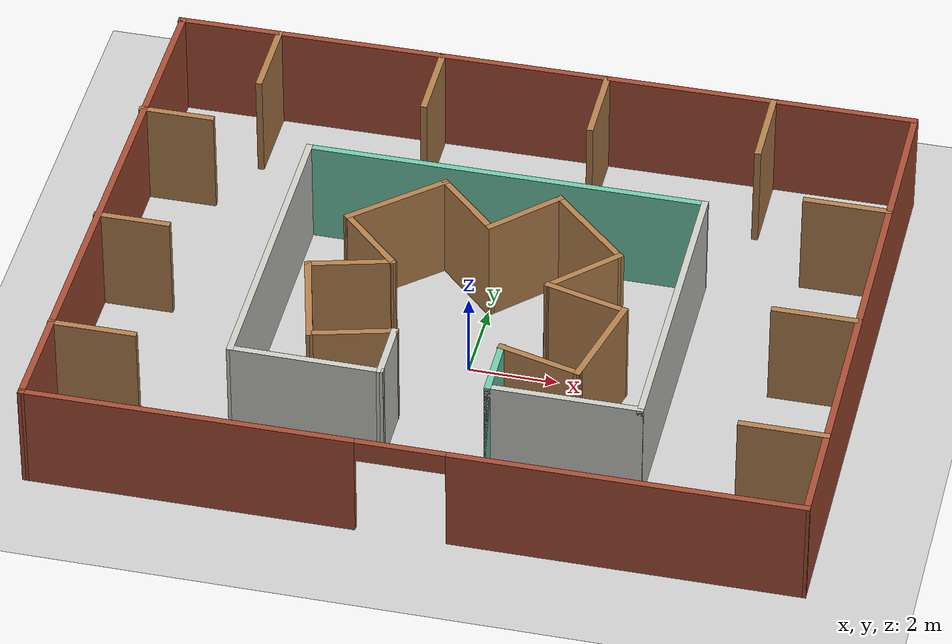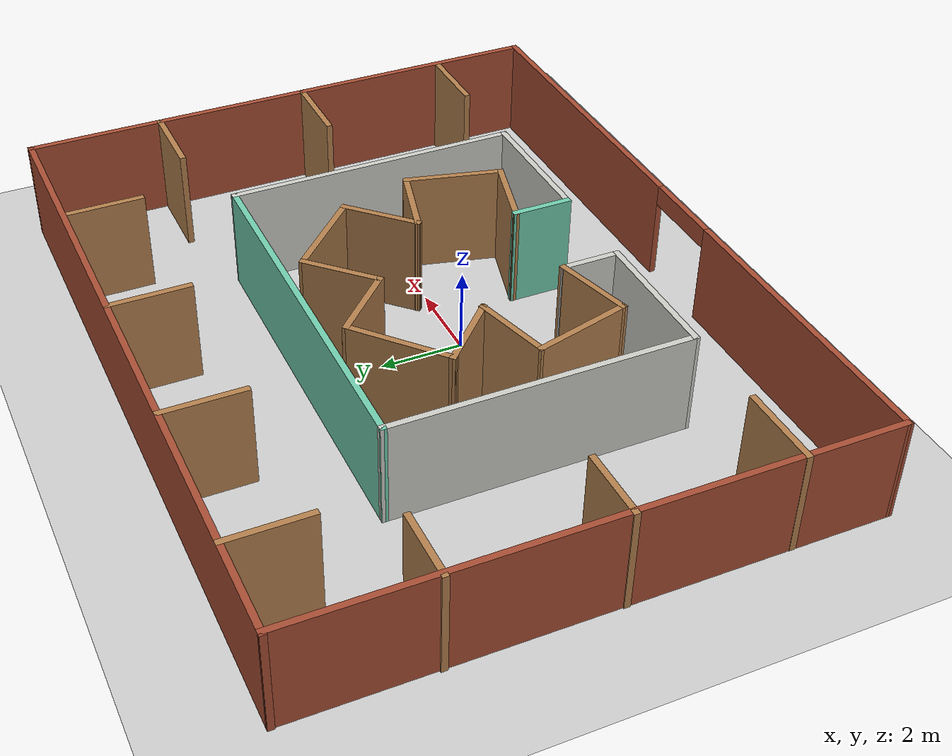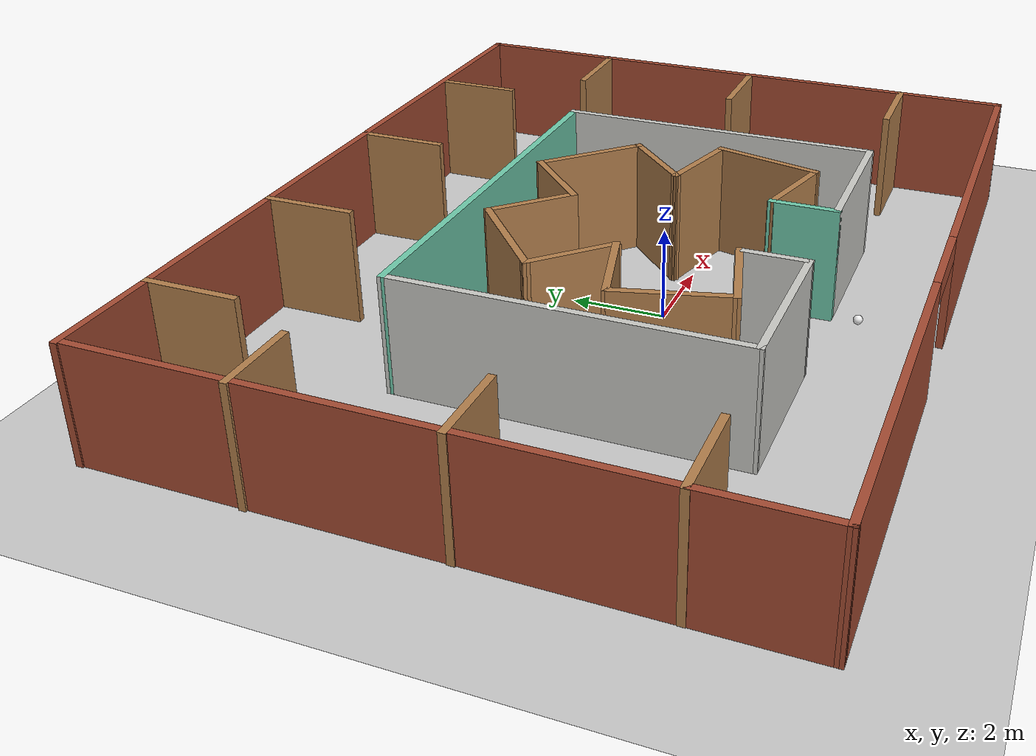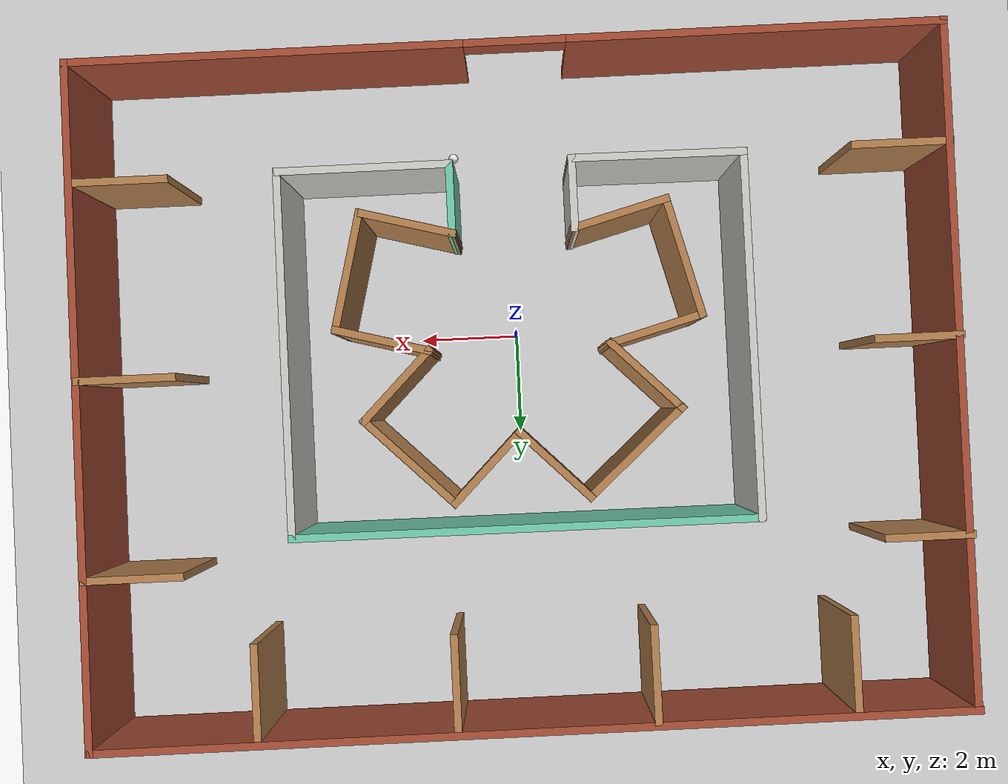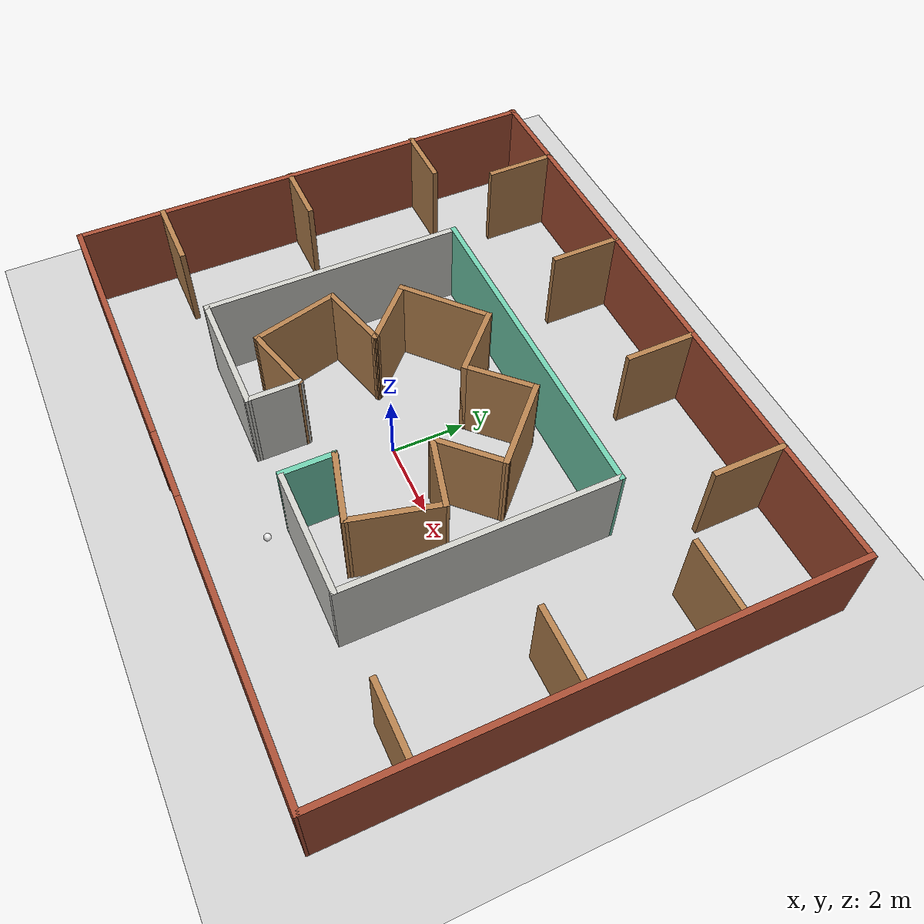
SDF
<sdf version="1.6">
 <world name="default">
  <plugin name="welcome" filename="libwelcome.so"/>
  <light name="sun" type="directional">
   <pose>0 0 10 0 -0 0</pose>
   <diffuse>0.8 0.8 0.8 1</diffuse>
   <specular>0.2 0.2 0.2 1</specular>
   <attenuation>
    <range>1000</range>
    <constant>0.9</constant>
    <linear>0.01</linear>
    <quadratic>0.001</quadratic>
   </attenuation>
   <direction>-0.5 0.1 -0.9</direction>
  </light>
  <model name="ground_plane">
   <static>1</static>
   <link name="link">
    <collision name="collision">
     <geometry><plane><normal>0 0 1</normal><size>100 100</size></plane></geometry>
     <surface>
      <contact><collide_bitmask>65535</collide_bitmask></contact>
      <friction><ode><mu>100</mu><mu2>50</mu2></ode></friction>
     </surface>
    </collision>
    <visual name="visual">
     <cast_shadows>0</cast_shadows>
     <geometry><plane><normal>0 0 1</normal><size>100 100</size></plane></geometry>
     <material>
      <script><uri>file://media/materials/scripts/gazebo.material</uri><name>Gazebo/Grey</name></script>
     </material>
    </visual>
   </link>
  </model>
  <gravity>0 0 -9.8</gravity>
  <magnetic_field>6e-06 2.3e-05 -4.2e-05</magnetic_field>
  <atmosphere type="adiabatic"/>
  <physics name="default_physics" default="0" type="ode">
   <max_step_size>0.001</max_step_size>
   <real_time_factor>1</real_time_factor>
   <real_time_update_rate>1000</real_time_update_rate>
  </physics>
  <scene><ambient>0.4 0.4 0.4 1</ambient><background>0.7 0.7 0.7 1</background><shadows>1</shadows></scene>
  <spherical_coordinates>
   <surface_model>EARTH_WGS84</surface_model>
   <latitude_deg>0</latitude_deg>
   <longitude_deg>0</longitude_deg>
   <elevation>0</elevation>
   <heading_deg>0</heading_deg>
  </spherical_coordinates>
  <model name="mybuilding">
   <pose>-0.00822 1.08526 0 0 -0 0</pose>
   <link name="Wall_107">
    <collision name="Wall_107_Collision">
     <geometry><box><size>13.5 0.15 2.5</size></box></geometry>
     <pose>0 0 1.25 0 -0 0</pose>
    </collision>
    <visual name="Wall_107_Visual">
     <pose>0 0 1.25 0 -0 0</pose>
     <geometry><box><size>13.5 0.15 2.5</size></box></geometry>
     <material>
      <script><uri>file://media/materials/scripts/gazebo.material</uri><name>Gazebo/Bricks</name></script>
      <ambient>1 1 1 1</ambient>
     </material>
     <meta><layer>0</layer></meta>
    </visual>
    <pose>-8.53983 -0.013147 0 0 -0 1.56629</pose>
   </link>
   <link name="Wall_110">
    <collision name="Wall_110_Collision">
     <geometry><box><size>17.2299 0.15 2.5</size></box></geometry>
     <pose>0 0 1.25 0 -0 0</pose>
    </collision>
    <visual name="Wall_110_Visual">
     <pose>0 0 1.25 0 -0 0</pose>
     <geometry><box><size>17.2299 0.15 2.5</size></box></geometry>
     <material>
      <script><uri>file://media/materials/scripts/gazebo.material</uri><name>Gazebo/Bricks</name></script>
      <ambient>1 1 1 1</ambient>
     </material>
     <meta><layer>0</layer></meta>
    </visual>
    <pose>8.4e-05 6.67505 0 0 -0 0.001545</pose>
   </link>
   <link name="Wall_117">
    <pose>-0.01492 -6.67493 0 0 -0 0.001545</pose>
    <visual name="Wall_117_Visual_0">
     <pose>-4.91882 0 1.25 0 -0 0</pose>
     <geometry><box><size>7.42235 0.15 2.5</size></box></geometry>
     <material>
      <script><uri>file://media/materials/scripts/gazebo.material</uri><name>Gazebo/Bricks</name></script>
      <ambient>1 1 1 1</ambient>
     </material>
     <meta><layer>0</layer></meta>
    </visual>
    <collision name="Wall_117_Collision_0">
     <geometry><box><size>7.42235 0.15 2.5</size></box></geometry>
     <pose>-4.91882 0 1.25 0 -0 0</pose>
    </collision>
    <visual name="Wall_117_Visual_1">
     <pose>4.71118 0 1.25 0 -0 0</pose>
     <geometry><box><size>7.83765 0.15 2.5</size></box></geometry>
     <material>
      <script><uri>file://media/materials/scripts/gazebo.material</uri><name>Gazebo/Bricks</name></script>
      <ambient>1 1 1 1</ambient>
     </material>
     <meta><layer>0</layer></meta>
    </visual>
    <collision name="Wall_117_Collision_1">
     <geometry><box><size>7.83765 0.15 2.5</size></box></geometry>
     <pose>4.71118 0 1.25 0 -0 0</pose>
    </collision>
    <visual name="Wall_117_Visual_2">
     <pose>-0.207647 0 2.25 0 -0 0</pose>
     <geometry><box><size>2 0.15 0.5</size></box></geometry>
     <material>
      <script><uri>file://media/materials/scripts/gazebo.material</uri><name>Gazebo/Bricks</name></script>
      <ambient>1 1 1 1</ambient>
     </material>
     <meta><layer>0</layer></meta>
    </visual>
    <collision name="Wall_117_Collision_2">
     <geometry><box><size>2 0.15 0.5</size></box></geometry>
     <pose>-0.207647 0 2.25 0 -0 0</pose>
    </collision>
   </link>
   <link name="Wall_127">
    <collision name="Wall_127_Collision">
     <geometry><box><size>2 0.15 2.5</size></box></geometry>
     <pose>0 0 1.25 0 -0 0</pose>
    </collision>
    <visual name="Wall_127_Visual">
     <pose>0 0 1.25 0 -0 0</pose>
     <geometry><box><size>2 0.15 2.5</size></box></geometry>
     <material>
      <script><uri>file://media/materials/scripts/gazebo.material</uri><name>Gazebo/Wood</name></script>
      <ambient>1 1 1 1</ambient>
     </material>
     <meta><layer>0</layer></meta>
    </visual>
    <pose>7.61507 -4.31172 0 0 -0 3.14159</pose>
   </link>
   <link name="Wall_132">
    <collision name="Wall_132_Collision">
     <geometry><box><size>2 0.15 2.5</size></box></geometry>
     <pose>0 0 1.25 0 -0 0</pose>
    </collision>
    <visual name="Wall_132_Visual">
     <pose>0 0 1.25 0 -0 0</pose>
     <geometry><box><size>2 0.15 2.5</size></box></geometry>
     <material>
      <script><uri>file://media/materials/scripts/gazebo.material</uri><name>Gazebo/Wood</name></script>
      <ambient>1 1 1 1</ambient>
     </material>
     <meta><layer>0</layer></meta>
    </visual>
    <pose>7.61507 -0.461718 0 0 -0 3.14159</pose>
   </link>
   <link name="Wall_135">
    <collision name="Wall_135_Collision">
     <geometry><box><size>2 0.15 2.5</size></box></geometry>
     <pose>0 0 1.25 0 -0 0</pose>
    </collision>
    <visual name="Wall_135_Visual">
     <pose>0 0 1.25 0 -0 0</pose>
     <geometry><box><size>2 0.15 2.5</size></box></geometry>
     <material>
      <script><uri>file://media/materials/scripts/gazebo.material</uri><name>Gazebo/Wood</name></script>
      <ambient>1 1 1 1</ambient>
     </material>
     <meta><layer>0</layer></meta>
    </visual>
    <pose>7.61507 3.38828 0 0 -0 3.14159</pose>
   </link>
   <link name="Wall_138">
    <collision name="Wall_138_Collision">
     <geometry><box><size>2 0.15 2.5</size></box></geometry>
     <pose>0 0 1.25 0 -0 0</pose>
    </collision>
    <visual name="Wall_138_Visual">
     <pose>0 0 1.25 0 -0 0</pose>
     <geometry><box><size>2 0.15 2.5</size></box></geometry>
     <material>
      <script><uri>file://media/materials/scripts/gazebo.material</uri><name>Gazebo/Wood</name></script>
      <ambient>1 1 1 1</ambient>
     </material>
     <meta><layer>0</layer></meta>
    </visual>
    <pose>-7.64491 -4.33815 0 0 -0 0</pose>
   </link>
   <link name="Wall_144">
    <collision name="Wall_144_Collision">
     <geometry><box><size>1.75 0.15 2.5</size></box></geometry>
     <pose>0 0 1.25 0 -0 0</pose>
    </collision>
    <visual name="Wall_144_Visual">
     <pose>0 0 1.25 0 -0 0</pose>
     <geometry><box><size>1.75 0.15 2.5</size></box></geometry>
     <material>
      <script><uri>file://media/materials/scripts/gazebo.material</uri><name>Gazebo/Wood</name></script>
      <ambient>1 1 1 1</ambient>
     </material>
     <meta><layer>0</layer></meta>
    </visual>
    <pose>-7.76991 -0.557319 0 0 -0 0</pose>
   </link>
   <link name="Wall_147">
    <collision name="Wall_147_Collision">
     <geometry><box><size>1.75 0.15 2.5</size></box></geometry>
     <pose>0 0 1.25 0 -0 0</pose>
    </collision>
    <visual name="Wall_147_Visual">
     <pose>0 0 1.25 0 -0 0</pose>
     <geometry><box><size>1.75 0.15 2.5</size></box></geometry>
     <material>
      <script><uri>file://media/materials/scripts/gazebo.material</uri><name>Gazebo/Wood</name></script>
      <ambient>1 1 1 1</ambient>
     </material>
     <meta><layer>0</layer></meta>
    </visual>
    <pose>-7.76991 3.29268 0 0 -0 0</pose>
   </link>
   <link name="Wall_149">
    <collision name="Wall_149_Collision">
     <geometry><box><size>13.5 0.15 2.5</size></box></geometry>
     <pose>0 0 1.25 0 -0 0</pose>
    </collision>
    <visual name="Wall_149_Visual">
     <pose>0 0 1.25 0 -0 0</pose>
     <geometry><box><size>13.5 0.15 2.5</size></box></geometry>
     <material>
      <script><uri>file://media/materials/scripts/gazebo.material</uri><name>Gazebo/Bricks</name></script>
      <ambient>1 1 1 1</ambient>
     </material>
     <meta><layer>0</layer></meta>
    </visual>
    <pose>8.55507 0.013265 0 0 -0 1.56855</pose>
   </link>
   <link name="Wall_152">
    <collision name="Wall_152_Collision">
     <geometry><box><size>2 0.15 2.5</size></box></geometry>
     <pose>0 0 1.25 0 -0 0</pose>
    </collision>
    <visual name="Wall_152_Visual">
     <pose>0 0 1.25 0 -0 0</pose>
     <geometry><box><size>2 0.15 2.5</size></box></geometry>
     <material>
      <script><uri>file://media/materials/scripts/gazebo.material</uri><name>Gazebo/Wood</name></script>
      <ambient>1 1 1 1</ambient>
     </material>
     <meta><layer>0</layer></meta>
    </visual>
    <pose>-6.21991 5.73685 0 0 -0 -1.5708</pose>
   </link>
   <link name="Wall_155">
    <collision name="Wall_155_Collision">
     <geometry><box><size>2 0.15 2.5</size></box></geometry>
     <pose>0 0 1.25 0 -0 0</pose>
    </collision>
    <visual name="Wall_155_Visual">
     <pose>0 0 1.25 0 -0 0</pose>
     <geometry><box><size>2 0.15 2.5</size></box></geometry>
     <material>
      <script><uri>file://media/materials/scripts/gazebo.material</uri><name>Gazebo/Wood</name></script>
      <ambient>1 1 1 1</ambient>
     </material>
     <meta><layer>0</layer></meta>
    </visual>
    <pose>-2.36991 5.73685 0 0 -0 -1.5708</pose>
   </link>
   <link name="Wall_160">
    <collision name="Wall_160_Collision">
     <geometry><box><size>2 0.15 2.5</size></box></geometry>
     <pose>0 0 1.25 0 -0 0</pose>
    </collision>
    <visual name="Wall_160_Visual">
     <pose>0 0 1.25 0 -0 0</pose>
     <geometry><box><size>2 0.15 2.5</size></box></geometry>
     <material>
      <script><uri>file://media/materials/scripts/gazebo.material</uri><name>Gazebo/Wood</name></script>
      <ambient>1 1 1 1</ambient>
     </material>
     <meta><layer>0</layer></meta>
    </visual>
    <pose>1.48009 5.73685 0 0 -0 -1.5708</pose>
   </link>
   <link name="Wall_163">
    <collision name="Wall_163_Collision">
     <geometry><box><size>2 0.15 2.5</size></box></geometry>
     <pose>0 0 1.25 0 -0 0</pose>
    </collision>
    <visual name="Wall_163_Visual">
     <pose>0 0 1.25 0 -0 0</pose>
     <geometry><box><size>2 0.15 2.5</size></box></geometry>
     <material>
      <script><uri>file://media/materials/scripts/gazebo.material</uri><name>Gazebo/Wood</name></script>
      <ambient>1 1 1 1</ambient>
     </material>
     <meta><layer>0</layer></meta>
    </visual>
    <pose>5.33009 5.73685 0 0 -0 -1.5708</pose>
   </link>
   <link name="Wall_33">
    <collision name="Wall_33_Collision">
     <geometry><box><size>2 0.15 2.5</size></box></geometry>
     <pose>0 0 1.25 0 -0 0</pose>
    </collision>
    <visual name="Wall_33_Visual">
     <pose>0 0 1.25 0 -0 0</pose>
     <geometry><box><size>2 0.15 2.5</size></box></geometry>
     <material>
      <script><uri>file://media/materials/scripts/gazebo.material</uri><name>Gazebo/Wood</name></script>
      <ambient>1 1 1 1</ambient>
     </material>
     <meta><layer>0</layer></meta>
    </visual>
    <pose>-0.629046 1.57671 0 0 -0 2.35619</pose>
   </link>
   <link name="Wall_35">
    <collision name="Wall_35_Collision">
     <geometry><box><size>2 0.15 2.5</size></box></geometry>
     <pose>0 0 1.25 0 -0 0</pose>
    </collision>
    <visual name="Wall_35_Visual">
     <pose>0 0 1.25 0 -0 0</pose>
     <geometry><box><size>2 0.15 2.5</size></box></geometry>
     <material>
      <script><uri>file://media/materials/scripts/gazebo.material</uri><name>Gazebo/Wood</name></script>
      <ambient>1 1 1 1</ambient>
     </material>
     <meta><layer>0</layer></meta>
    </visual>
    <pose>-2.46726 -0.064147 0 0 -0 2.35619</pose>
   </link>
   <link name="Wall_36">
    <collision name="Wall_36_Collision">
     <geometry><box><size>2.61403 0.15 2.5</size></box></geometry>
     <pose>0 0 1.25 0 -0 0</pose>
    </collision>
    <visual name="Wall_36_Visual">
     <pose>0 0 1.25 0 -0 0</pose>
     <geometry><box><size>2.61403 0.15 2.5</size></box></geometry>
     <material>
      <script><uri>file://media/materials/scripts/gazebo.material</uri><name>Gazebo/Wood</name></script>
      <ambient>1 1 1 1</ambient>
     </material>
     <meta><layer>0</layer></meta>
    </visual>
    <pose>-2.20222 1.41036 0 0 -0 0.728734</pose>
   </link>
   <link name="Wall_38">
    <collision name="Wall_38_Collision">
     <geometry><box><size>2 0.15 2.5</size></box></geometry>
     <pose>0 0 1.25 0 -0 0</pose>
    </collision>
    <visual name="Wall_38_Visual">
     <pose>0 0 1.25 0 -0 0</pose>
     <geometry><box><size>2 0.15 2.5</size></box></geometry>
     <material>
      <script><uri>file://media/materials/scripts/gazebo.material</uri><name>Gazebo/Wood</name></script>
      <ambient>1 1 1 1</ambient>
     </material>
     <meta><layer>0</layer></meta>
    </visual>
    <pose>0.679101 1.57671 0 0 -0 0.785398</pose>
   </link>
   <link name="Wall_40">
    <collision name="Wall_40_Collision">
     <geometry><box><size>2 0.15 2.5</size></box></geometry>
     <pose>0 0 1.25 0 -0 0</pose>
    </collision>
    <visual name="Wall_40_Visual">
     <pose>0 0 1.25 0 -0 0</pose>
     <geometry><box><size>2 0.15 2.5</size></box></geometry>
     <material>
      <script><uri>file://media/materials/scripts/gazebo.material</uri><name>Gazebo/Wood</name></script>
      <ambient>1 1 1 1</ambient>
     </material>
     <meta><layer>0</layer></meta>
    </visual>
    <pose>2.36847 -0.084989 0 0 -0 0.785398</pose>
   </link>
   <link name="Wall_41">
    <collision name="Wall_41_Collision">
     <geometry><box><size>2.51964 0.15 2.5</size></box></geometry>
     <pose>0 0 1.25 0 -0 0</pose>
    </collision>
    <visual name="Wall_41_Visual">
     <pose>0 0 1.25 0 -0 0</pose>
     <geometry><box><size>2.51964 0.15 2.5</size></box></geometry>
     <material>
      <script><uri>file://media/materials/scripts/gazebo.material</uri><name>Gazebo/Wood</name></script>
      <ambient>1 1 1 1</ambient>
     </material>
     <meta><layer>0</layer></meta>
    </visual>
    <pose>2.17786 1.39993 0 0 -0 2.36445</pose>
   </link>
   <link name="Wall_43">
    <collision name="Wall_43_Collision">
     <geometry><box><size>2 0.15 2.5</size></box></geometry>
     <pose>0 0 1.25 0 -0 0</pose>
    </collision>
    <visual name="Wall_43_Visual">
     <pose>0 0 1.25 0 -0 0</pose>
     <geometry><box><size>2 0.15 2.5</size></box></geometry>
     <material>
      <script><uri>file://media/materials/scripts/gazebo.material</uri><name>Gazebo/Wood</name></script>
      <ambient>1 1 1 1</ambient>
     </material>
     <meta><layer>0</layer></meta>
    </visual>
    <pose>2.60787 -0.97847 0 0 -0 -0.261799</pose>
   </link>
   <link name="Wall_45">
    <collision name="Wall_45_Collision">
     <geometry><box><size>2 0.15 2.5</size></box></geometry>
     <pose>0 0 1.25 0 -0 0</pose>
    </collision>
    <visual name="Wall_45_Visual">
     <pose>0 0 1.25 0 -0 0</pose>
     <geometry><box><size>2 0.15 2.5</size></box></geometry>
     <material>
      <script><uri>file://media/materials/scripts/gazebo.material</uri><name>Gazebo/Wood</name></script>
      <ambient>1 1 1 1</ambient>
     </material>
     <meta><layer>0</layer></meta>
    </visual>
    <pose>2.05348 -3.2312 0 0 -0 -0.261799</pose>
   </link>
   <link name="Wall_46">
    <collision name="Wall_46_Collision">
     <geometry><box><size>2.46995 0.15 2.5</size></box></geometry>
     <pose>0 0 1.25 0 -0 0</pose>
    </collision>
    <visual name="Wall_46_Visual">
     <pose>0 0 1.25 0 -0 0</pose>
     <geometry><box><size>2.46995 0.15 2.5</size></box></geometry>
     <material>
      <script><uri>file://media/materials/scripts/gazebo.material</uri><name>Gazebo/Wood</name></script>
      <ambient>1 1 1 1</ambient>
     </material>
     <meta><layer>0</layer></meta>
    </visual>
    <pose>3.22416 -2.34424 0 0 -0 1.32949</pose>
   </link>
   <link name="Wall_50">
    <collision name="Wall_50_Collision">
     <geometry><box><size>2 0.15 2.5</size></box></geometry>
     <pose>0 0 1.25 0 -0 0</pose>
    </collision>
    <visual name="Wall_50_Visual">
     <pose>0 0 1.25 0 -0 0</pose>
     <geometry><box><size>2 0.15 2.5</size></box></geometry>
     <material>
      <script><uri>file://media/materials/scripts/gazebo.material</uri><name>Gazebo/Wood</name></script>
      <ambient>1 1 1 1</ambient>
     </material>
     <meta><layer>0</layer></meta>
    </visual>
    <pose>-2.11339 -3.22755 0 0 -0 -2.87979</pose>
   </link>
   <link name="Wall_52">
    <collision name="Wall_52_Collision">
     <geometry><box><size>2 0.15 2.5</size></box></geometry>
     <pose>0 0 1.25 0 -0 0</pose>
    </collision>
    <visual name="Wall_52_Visual">
     <pose>0 0 1.25 0 -0 0</pose>
     <geometry><box><size>2 0.15 2.5</size></box></geometry>
     <material>
      <script><uri>file://media/materials/scripts/gazebo.material</uri><name>Gazebo/Wood</name></script>
      <ambient>1 1 1 1</ambient>
     </material>
     <meta><layer>0</layer></meta>
    </visual>
    <pose>-2.70666 -0.957628 0 0 -0 -2.87979</pose>
   </link>
   <link name="Wall_53">
    <collision name="Wall_53_Collision">
     <geometry><box><size>2.49617 0.15 2.5</size></box></geometry>
     <pose>0 0 1.25 0 -0 0</pose>
    </collision>
    <visual name="Wall_53_Visual">
     <pose>0 0 1.25 0 -0 0</pose>
     <geometry><box><size>2.49617 0.15 2.5</size></box></geometry>
     <material>
      <script><uri>file://media/materials/scripts/gazebo.material</uri><name>Gazebo/Wood</name></script>
      <ambient>1 1 1 1</ambient>
     </material>
     <meta><layer>0</layer></meta>
    </visual>
    <pose>-3.30351 -2.332 0 0 -0 -1.31515</pose>
   </link>
   <link name="Wall_55">
    <collision name="Wall_55_Collision">
     <geometry><box><size>1.5 0.15 2.5</size></box></geometry>
     <pose>0 0 1.25 0 -0 0</pose>
    </collision>
    <visual name="Wall_55_Visual">
     <pose>0 0 1.25 0 -0 0</pose>
     <geometry><box><size>1.5 0.15 2.5</size></box></geometry>
     <material>
      <script><uri>file://media/materials/scripts/gazebo.material</uri><name>Gazebo/CeilingTiled</name></script>
      <ambient>0.435294 0.796078 0.67451 1</ambient>
     </material>
     <meta><layer>0</layer></meta>
    </visual>
    <pose>-1.21991 -3.66315 0 0 -0 -1.5708</pose>
   </link>
   <link name="Wall_57">
    <collision name="Wall_57_Collision">
     <geometry><box><size>1.5 0.15 2.5</size></box></geometry>
     <pose>0 0 1.25 0 -0 0</pose>
    </collision>
    <visual name="Wall_57_Visual">
     <pose>0 0 1.25 0 -0 0</pose>
     <geometry><box><size>1.5 0.15 2.5</size></box></geometry>
     <material>
      <script><uri>file://media/materials/scripts/gazebo.material</uri><name>Gazebo/Grey</name></script>
      <ambient>0.435294 0.796078 0.67451 1</ambient>
     </material>
     <meta><layer>0</layer></meta>
    </visual>
    <pose>1.16 -3.66679 0 0 -0 -1.5708</pose>
   </link>
   <link name="Wall_84">
    <collision name="Wall_84_Collision">
     <geometry><box><size>7.25 0.15 2.5</size></box></geometry>
     <pose>0 0 1.25 0 -0 0</pose>
    </collision>
    <visual name="Wall_84_Visual">
     <pose>0 0 1.25 0 -0 0</pose>
     <geometry><box><size>7.25 0.15 2.5</size></box></geometry>
     <material>
      <script><uri>file://media/materials/scripts/gazebo.material</uri><name>Gazebo/CeilingTiled</name></script>
      <ambient>0.435294 0.796078 0.67451 1</ambient>
     </material>
     <meta><layer>0</layer></meta>
    </visual>
    <pose>-4.55523 -0.766817 0 0 -0 1.5708</pose>
   </link>
   <link name="Wall_87">
    <collision name="Wall_87_Collision">
     <geometry><box><size>7.25 0.15 2.5</size></box></geometry>
     <pose>0 0 1.25 0 -0 0</pose>
    </collision>
    <visual name="Wall_87_Visual">
     <pose>0 0 1.25 0 -0 0</pose>
     <geometry><box><size>7.25 0.15 2.5</size></box></geometry>
     <material>
      <script><uri>file://media/materials/scripts/gazebo.material</uri><name>Gazebo/CeilingTiled</name></script>
      <ambient>0.435294 0.796078 0.67451 1</ambient>
     </material>
     <meta><layer>0</layer></meta>
    </visual>
    <pose>4.50999 -0.791793 0 0 -0 1.5708</pose>
   </link>
   <link name="Wall_90">
    <collision name="Wall_90_Collision">
     <geometry><box><size>9.21526 0.15 2.5</size></box></geometry>
     <pose>0 0 1.25 0 -0 0</pose>
    </collision>
    <visual name="Wall_90_Visual">
     <pose>0 0 1.25 0 -0 0</pose>
     <geometry><box><size>9.21526 0.15 2.5</size></box></geometry>
     <material>
      <script><uri>file://media/materials/scripts/gazebo.material</uri><name>Gazebo/Grey</name></script>
      <ambient>0.435294 0.796078 0.67451 1</ambient>
     </material>
     <meta><layer>0</layer></meta>
    </visual>
    <pose>-0.022615 2.77069 0 0 -0 3.13884</pose>
   </link>
   <link name="Wall_92">
    <collision name="Wall_92_Collision">
     <geometry><box><size>3.48538 0.15 2.5</size></box></geometry>
     <pose>0 0 1.25 0 -0 0</pose>
    </collision>
    <visual name="Wall_92_Visual">
     <pose>0 0 1.25 0 -0 0</pose>
     <geometry><box><size>3.48538 0.15 2.5</size></box></geometry>
     <material>
      <script><uri>file://media/materials/scripts/gazebo.material</uri><name>Gazebo/CeilingTiled</name></script>
      <ambient>0.435294 0.796078 0.67451 1</ambient>
     </material>
     <meta><layer>0</layer></meta>
    </visual>
    <pose>-2.88757 -4.32748 0 0 -0 -0.006395</pose>
   </link>
   <link name="Wall_96">
    <collision name="Wall_96_Collision">
     <geometry><box><size>3.5 0.15 2.5</size></box></geometry>
     <pose>0 0 1.25 0 -0 0</pose>
    </collision>
    <visual name="Wall_96_Visual">
     <pose>0 0 1.25 0 -0 0</pose>
     <geometry><box><size>3.5 0.15 2.5</size></box></geometry>
     <material>
      <script><uri>file://media/materials/scripts/gazebo.material</uri><name>Gazebo/CeilingTiled</name></script>
      <ambient>0.435294 0.796078 0.67451 1</ambient>
     </material>
     <meta><layer>0</layer></meta>
    </visual>
    <pose>2.835 -4.34179 0 0 -0 0</pose>
   </link>
   <static>1</static>
  </model>
  <model name="my_ball">
   <link name="link_0">
    <inertial>
     <mass>1</mass>
     <inertia><ixx>0.1</ixx><ixy>0</ixy><ixz>0</ixz><iyy>0.1</iyy><iyz>0</iyz><izz>0.1</izz></inertia>
    </inertial>
    <visual name="visual">
     <geometry><sphere><radius>0.1</radius></sphere></geometry>
     <material>
      <lighting>1</lighting>
      <script><uri>file://media/materials/scripts/gazebo.material</uri><name>Gazebo/White</name></script>
      <ambient>1 1 1 1</ambient>
      <diffuse>1 1 1 1</diffuse>
      <specular>1 1 1 1</specular>
      <emissive>1 1 1 1</emissive>
      <shader type="vertex"><normal_map>__default__</normal_map></shader>
     </material>
    </visual>
    <collision name="collision">
     <geometry><sphere><radius>0.1</radius></sphere></geometry>
     <surface>
      <friction>
       <ode><mu>1</mu><mu2>1</mu2><fdir1>0 0 0</fdir1><slip1>0</slip1><slip2>0</slip2></ode>
       <torsional>
        <coefficient>1</coefficient>
        <patch_radius>0</patch_radius>
        <surface_radius>0</surface_radius>
        <use_patch_radius>1</use_patch_radius>
        <ode><slip>0</slip></ode>
       </torsional>
      </friction>
      <bounce><restitution_coefficient>0</restitution_coefficient><threshold>1e+06</threshold></bounce>
      <contact>
       <collide_without_contact>0</collide_without_contact>
       <collide_without_contact_bitmask>1</collide_without_contact_bitmask>
       <collide_bitmask>1</collide_bitmask>
       <ode>
        <soft_cfm>0</soft_cfm>
        <soft_erp>0.2</soft_erp>
        <kp>1e+13</kp>
        <kd>1</kd>
        <max_vel>0.01</max_vel>
        <min_depth>0</min_depth>
       </ode>
       <bullet>
        <split_impulse>1</split_impulse>
        <split_impulse_penetration_threshold>-0.01</split_impulse_penetration_threshold>
        <soft_cfm>0</soft_cfm>
        <soft_erp>0.2</soft_erp>
        <kp>1e+13</kp>
        <kd>1</kd>
       </bullet>
      </contact>
     </surface>
    </collision>
   </link>
   <static>0</static>
   <pose>1.1663 -3.86481 0.1 0 -0 0</pose>
  </model>
 </world>
</sdf>
